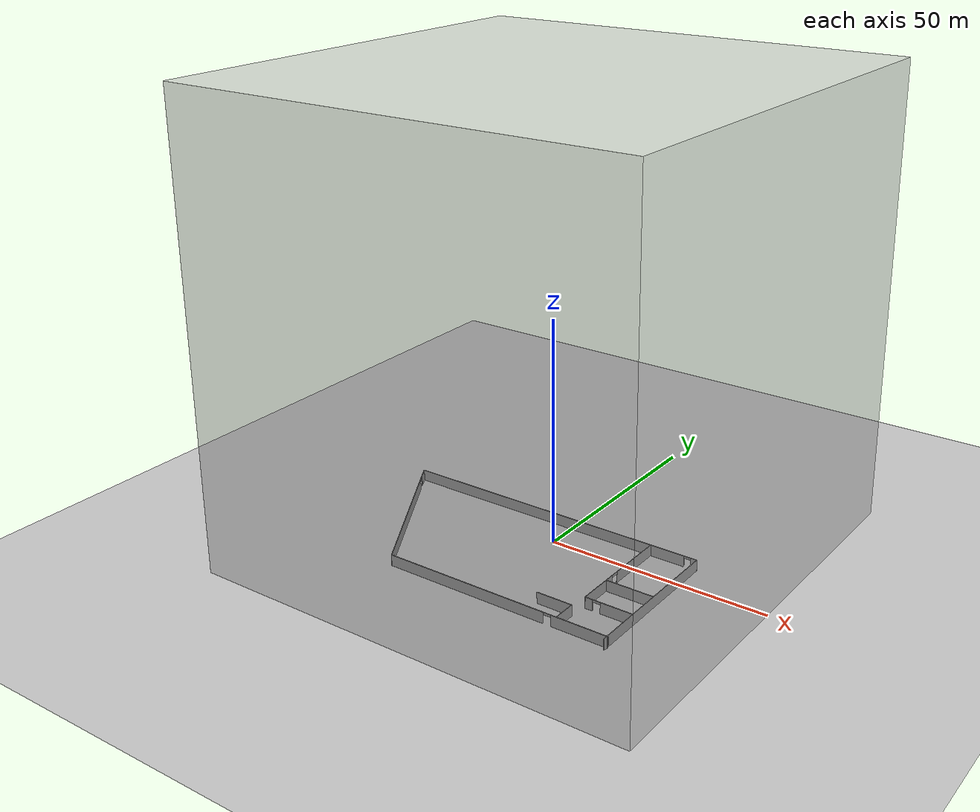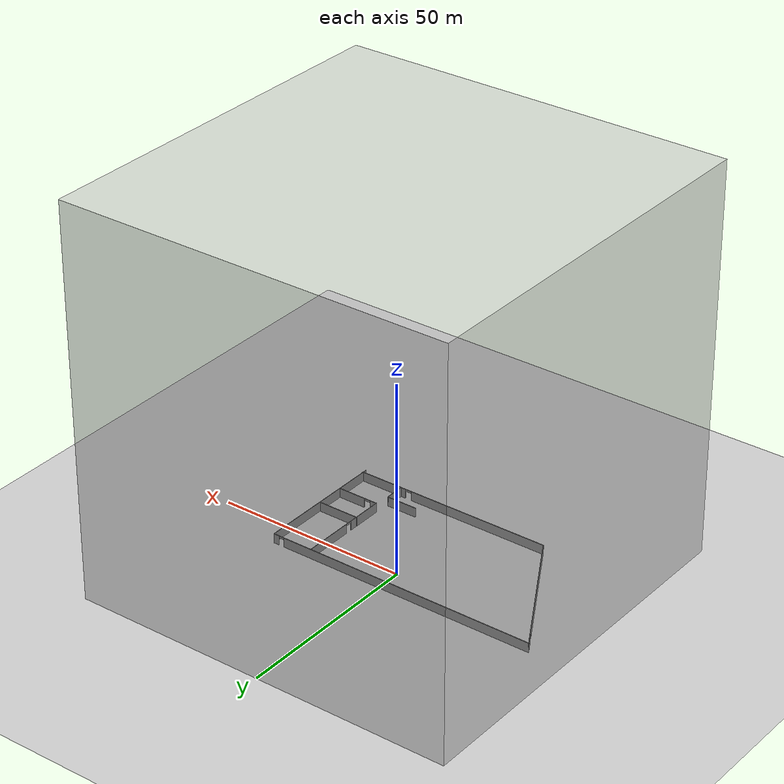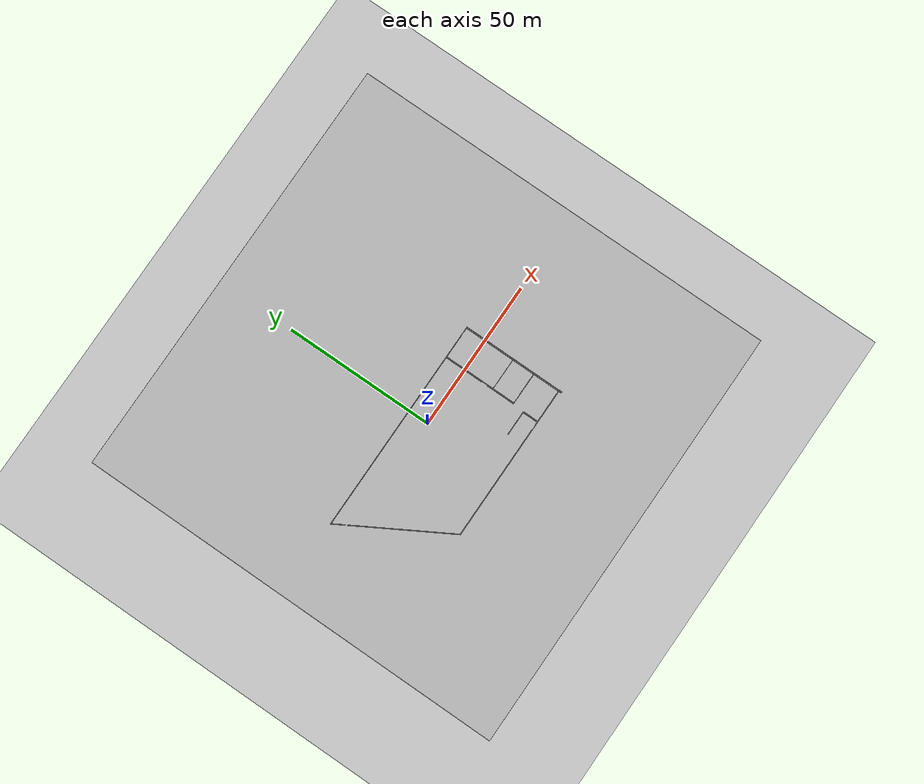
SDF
<sdf version="1.5">
 <world name="default">
  <include><uri>model://sun</uri></include>
  <physics default="0" name="default_physics" type="ode">
   <max_step_size>0.001</max_step_size>
   <real_time_factor>1</real_time_factor>
   <real_time_update_rate>1000</real_time_update_rate>
   <ode>
    <solver>
     <type>quick</type>
     <iters>50</iters>
     <sor>1.0</sor>
     <use_dynamic_moi_rescaling>false</use_dynamic_moi_rescaling>
    </solver>
   </ode>
  </physics>
  <model name="ground_plane">
   <static>true</static>
   <link name="plane">
    <visual name="plane_visual">
     <geometry><plane><normal>0 0 1</normal><size>1000 1000</size></plane></geometry>
    </visual>
    <collision name="plane_collision">
     <geometry><plane><normal>0 0 1</normal><size>1000 1000</size></plane></geometry>
     <surface><friction><ode><mu>0.1</mu><mu2>0.1</mu2></ode></friction></surface>
    </collision>
   </link>
  </model>
  <model name="face_plane_1">
   <static>false</static>
   <link name="link">
    <gravity>0</gravity>
    <visual name="visual">
     <geometry><plane><normal>0 0 1</normal><size>0.24 0.32</size></plane></geometry>
     <material>
      <script>
       <uri>file:///mnt/catkin_ws/src/nesfr3_simulations/nesfr3_gazebo/materials/faces.material</uri>
       <name>face_1</name>
      </script>
     </material>
    </visual>
   </link>
  </model>
  <include><uri>model://wom_office</uri></include>
  <model name="big box">
   <static>true</static>
   <link name="link ceiling">
    <visual name="visual ceiling">
     <pose>0 0 100 0 0 0</pose>
     <transparency>0.5</transparency>
     <geometry><plane><normal>0 0 1</normal><size>100 100</size></plane></geometry>
    </visual>
   </link>
   <link name="link front_wall">
    <visual name="visual front_wall">
     <pose>50 0 50 0 -1.5708 0</pose>
     <transparency>0.5</transparency>
     <geometry><plane><normal>0 0 0</normal><size>100 100</size></plane></geometry>
    </visual>
   </link>
   <link name="link left_wall">
    <visual name="visual left_wall">
     <pose>0 50 50 -1.5708 0 0</pose>
     <transparency>0.5</transparency>
     <geometry><plane><normal>0 0 0</normal><size>100 100</size></plane></geometry>
    </visual>
   </link>
   <link name="link right_wall">
    <visual name="visual right_wall">
     <pose>0 -50 50 -1.5708 0 0</pose>
     <transparency>0.5</transparency>
     <geometry><plane><normal>0 0 0</normal><size>100 100</size></plane></geometry>
    </visual>
   </link>
   <link name="link back_wall">
    <visual name="visual back_wall">
     <pose>-50 0 50 0 -1.5708 0</pose>
     <transparency>0.5</transparency>
     <geometry><plane><normal>0 0 0</normal><size>100 100</size></plane></geometry>
    </visual>
   </link>
  </model>
 </world>
</sdf>

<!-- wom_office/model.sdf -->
<sdf version='1.6'>
  <model name='wom_office'>
    <pose frame=''>-5.12929 -10.5377 0 0 -0 0</pose>
    <link name='Wall_15'>
      <collision name='Wall_15_Collision'>
        <geometry>
          <box>
            <size>34.75 0.15 2.5</size>
          </box>
        </geometry>
        <pose frame=''>0 0 1.25 0 -0 0</pose>
      </collision>
      <visual name='Wall_15_Visual'>
        <pose frame=''>0 0 1.25 0 -0 0</pose>
        <geometry>
          <box>
            <size>34.75 0.15 2.5</size>
          </box>
        </geometry>
        <material>
          <script>
            <uri>file://media/materials/scripts/gazebo.material</uri>
            <name>Gazebo/Grey</name>
          </script>
          <ambient>1 1 1 1</ambient>
        </material>
        <meta>
          <layer>0</layer>
        </meta>
      </visual>
      <pose frame=''>35.7762 -0.009668 0 0 -0 -1.5708</pose>
    </link>
    <link name='Wall_18'>
      <collision name='Wall_18_Collision'>
        <geometry>
          <box>
            <size>11 0.15 2.5</size>
          </box>
        </geometry>
        <pose frame=''>0 0 1.25 0 -0 0</pose>
      </collision>
      <visual name='Wall_18_Visual'>
        <pose frame=''>0 0 1.25 0 -0 0</pose>
        <geometry>
          <box>
            <size>11 0.15 2.5</size>
          </box>
        </geometry>
        <material>
          <script>
            <uri>file://media/materials/scripts/gazebo.material</uri>
            <name>Gazebo/Grey</name>
          </script>
          <ambient>1 1 1 1</ambient>
        </material>
        <meta>
          <layer>0</layer>
        </meta>
      </visual>
      <pose frame=''>30.3437 0.299655 0 0 -0 0</pose>
    </link>
    <link name='Wall_20'>
      <collision name='Wall_20_Collision'>
        <geometry>
          <box>
            <size>8.25 0.15 2.5</size>
          </box>
        </geometry>
        <pose frame=''>0 0 1.25 0 -0 0</pose>
      </collision>
      <visual name='Wall_20_Visual'>
        <pose frame=''>0 0 1.25 0 -0 0</pose>
        <geometry>
          <box>
            <size>8.25 0.15 2.5</size>
          </box>
        </geometry>
        <material>
          <script>
            <uri>file://media/materials/scripts/gazebo.material</uri>
            <name>Gazebo/Grey</name>
          </script>
          <ambient>1 1 1 1</ambient>
        </material>
        <meta>
          <layer>0</layer>
        </meta>
      </visual>
      <pose frame=''>20.3591 -11.1545 0 0 -0 0</pose>
    </link>
    <link name='Wall_21'>
      <collision name='Wall_21_Collision'>
        <geometry>
          <box>
            <size>5.25 0.15 2.5</size>
          </box>
        </geometry>
        <pose frame=''>0 0 1.25 0 -0 0</pose>
      </collision>
      <visual name='Wall_21_Visual'>
        <pose frame=''>0 0 1.25 0 -0 0</pose>
        <geometry>
          <box>
            <size>5.25 0.15 2.5</size>
          </box>
        </geometry>
        <material>
          <script>
            <uri>file://media/materials/scripts/gazebo.material</uri>
            <name>Gazebo/Grey</name>
          </script>
          <ambient>1 1 1 1</ambient>
        </material>
        <meta>
          <layer>0</layer>
        </meta>
      </visual>
      <pose frame=''>24.4091 -13.7045 0 0 -0 -1.5708</pose>
    </link>
    <link name='Wall_23'>
      <pose frame=''>24.9187 8.72466 0 0 -0 1.5708</pose>
      <visual name='Wall_23_Visual_0'>
        <pose frame=''>-7.42244 0 1.25 0 -0 0</pose>
        <geometry>
          <box>
            <size>2.15512 0.15 2.5</size>
          </box>
        </geometry>
        <material>
          <script>
            <uri>file://media/materials/scripts/gazebo.material</uri>
            <name>Gazebo/Grey</name>
          </script>
          <ambient>1 1 1 1</ambient>
        </material>
        <meta>
          <layer>0</layer>
        </meta>
      </visual>
      <collision name='Wall_23_Collision_0'>
        <geometry>
          <box>
            <size>2.15512 0.15 2.5</size>
          </box>
        </geometry>
        <pose frame=''>-7.42244 0 1.25 0 -0 0</pose>
      </collision>
      <visual name='Wall_23_Visual_1'>
        <pose frame=''>1.95317 0 1.25 0 -0 0</pose>
        <geometry>
          <box>
            <size>13.0937 0.15 2.5</size>
          </box>
        </geometry>
        <material>
          <script>
            <uri>file://media/materials/scripts/gazebo.material</uri>
            <name>Gazebo/Grey</name>
          </script>
          <ambient>1 1 1 1</ambient>
        </material>
        <meta>
          <layer>0</layer>
        </meta>
      </visual>
      <collision name='Wall_23_Collision_1'>
        <geometry>
          <box>
            <size>13.0937 0.15 2.5</size>
          </box>
        </geometry>
        <pose frame=''>1.95317 0 1.25 0 -0 0</pose>
      </collision>
      <visual name='Wall_23_Visual_2'>
        <pose frame=''>-5.46927 0 2.25 0 -0 0</pose>
        <geometry>
          <box>
            <size>1.75121 0.15 0.5</size>
          </box>
        </geometry>
        <material>
          <script>
            <uri>file://media/materials/scripts/gazebo.material</uri>
            <name>Gazebo/Grey</name>
          </script>
          <ambient>1 1 1 1</ambient>
        </material>
        <meta>
          <layer>0</layer>
        </meta>
      </visual>
      <collision name='Wall_23_Collision_2'>
        <geometry>
          <box>
            <size>1.75121 0.15 0.5</size>
          </box>
        </geometry>
        <pose frame=''>-5.46927 0 2.25 0 -0 0</pose>
      </collision>
    </link>
    <link name='Wall_29'>
      <collision name='Wall_29_Collision'>
        <geometry>
          <box>
            <size>7.75 0.15 2.5</size>
          </box>
        </geometry>
        <pose frame=''>0 0 1.25 0 -0 0</pose>
      </collision>
      <visual name='Wall_29_Visual'>
        <pose frame=''>0 0 1.25 0 -0 0</pose>
        <geometry>
          <box>
            <size>7.75 0.15 2.5</size>
          </box>
        </geometry>
        <material>
          <script>
            <uri>file://media/materials/scripts/gazebo.material</uri>
            <name>Gazebo/Grey</name>
          </script>
          <ambient>1 1 1 1</ambient>
        </material>
        <meta>
          <layer>0</layer>
        </meta>
      </visual>
      <pose frame=''>24.9187 -3.50034 0 0 -0 -1.5708</pose>
    </link>
    <link name='Wall_30'>
      <pose frame=''>30.3437 -7.30034 0 0 -0 0</pose>
      <visual name='Wall_30_Visual_0'>
        <pose frame=''>-4.59271 0 1.25 0 -0 0</pose>
        <geometry>
          <box>
            <size>1.81458 0.15 2.5</size>
          </box>
        </geometry>
        <material>
          <script>
            <uri>file://media/materials/scripts/gazebo.material</uri>
            <name>Gazebo/Grey</name>
          </script>
          <ambient>1 1 1 1</ambient>
        </material>
        <meta>
          <layer>0</layer>
        </meta>
      </visual>
      <collision name='Wall_30_Collision_0'>
        <geometry>
          <box>
            <size>1.81458 0.15 2.5</size>
          </box>
        </geometry>
        <pose frame=''>-4.59271 0 1.25 0 -0 0</pose>
      </collision>
      <visual name='Wall_30_Visual_1'>
        <pose frame=''>1.78289 0 1.25 0 -0 0</pose>
        <geometry>
          <box>
            <size>7.43422 0.15 2.5</size>
          </box>
        </geometry>
        <material>
          <script>
            <uri>file://media/materials/scripts/gazebo.material</uri>
            <name>Gazebo/Grey</name>
          </script>
          <ambient>1 1 1 1</ambient>
        </material>
        <meta>
          <layer>0</layer>
        </meta>
      </visual>
      <collision name='Wall_30_Collision_1'>
        <geometry>
          <box>
            <size>7.43422 0.15 2.5</size>
          </box>
        </geometry>
        <pose frame=''>1.78289 0 1.25 0 -0 0</pose>
      </collision>
      <visual name='Wall_30_Visual_2'>
        <pose frame=''>-2.80982 0 2.25 0 -0 0</pose>
        <geometry>
          <box>
            <size>1.75121 0.15 0.5</size>
          </box>
        </geometry>
        <material>
          <script>
            <uri>file://media/materials/scripts/gazebo.material</uri>
            <name>Gazebo/Grey</name>
          </script>
          <ambient>1 1 1 1</ambient>
        </material>
        <meta>
          <layer>0</layer>
        </meta>
      </visual>
      <collision name='Wall_30_Collision_2'>
        <geometry>
          <box>
            <size>1.75121 0.15 0.5</size>
          </box>
        </geometry>
        <pose frame=''>-2.80982 0 2.25 0 -0 0</pose>
      </collision>
    </link>
    <link name='Wall_4'>
      <pose frame=''>-0.066074 17.2863 0 0 -0 0.000113</pose>
      <visual name='Wall_4_Visual_0'>
        <pose frame=''>-1.51504 0 1.25 0 -0 0</pose>
        <geometry>
          <box>
            <size>68.8045 0.15 2.5</size>
          </box>
        </geometry>
        <material>
          <script>
            <uri>file://media/materials/scripts/gazebo.material</uri>
            <name>Gazebo/Grey</name>
          </script>
          <ambient>1 1 1 1</ambient>
        </material>
        <meta>
          <layer>0</layer>
        </meta>
      </visual>
      <collision name='Wall_4_Collision_0'>
        <geometry>
          <box>
            <size>68.8045 0.15 2.5</size>
          </box>
        </geometry>
        <pose frame=''>-1.51504 0 1.25 0 -0 0</pose>
      </collision>
      <visual name='Wall_4_Visual_1'>
        <pose frame=''>35.1449 0 1.25 0 -0 0</pose>
        <geometry>
          <box>
            <size>1.54488 0.15 2.5</size>
          </box>
        </geometry>
        <material>
          <script>
            <uri>file://media/materials/scripts/gazebo.material</uri>
            <name>Gazebo/Grey</name>
          </script>
          <ambient>1 1 1 1</ambient>
        </material>
        <meta>
          <layer>0</layer>
        </meta>
      </visual>
      <collision name='Wall_4_Collision_1'>
        <geometry>
          <box>
            <size>1.54488 0.15 2.5</size>
          </box>
        </geometry>
        <pose frame=''>35.1449 0 1.25 0 -0 0</pose>
      </collision>
      <visual name='Wall_4_Visual_2'>
        <pose frame=''>33.6298 0 2.25 0 -0 0</pose>
        <geometry>
          <box>
            <size>1.4852 0.15 0.5</size>
          </box>
        </geometry>
        <material>
          <script>
            <uri>file://media/materials/scripts/gazebo.material</uri>
            <name>Gazebo/Grey</name>
          </script>
          <ambient>1 1 1 1</ambient>
        </material>
        <meta>
          <layer>0</layer>
        </meta>
      </visual>
      <collision name='Wall_4_Collision_2'>
        <geometry>
          <box>
            <size>1.4852 0.15 0.5</size>
          </box>
        </geometry>
        <pose frame=''>33.6298 0 2.25 0 -0 0</pose>
      </collision>
    </link>
    <link name='Wall_6'>
      <pose frame=''>9.72623 -16.3629 0 0 -0 3.14159</pose>
      <visual name='Wall_6_Visual_0'>
        <pose frame=''>-19.8106 0 1.25 0 -0 0</pose>
        <geometry>
          <box>
            <size>12.948 0.15 2.5</size>
          </box>
        </geometry>
        <material>
          <script>
            <uri>file://media/materials/scripts/gazebo.material</uri>
            <name>Gazebo/Grey</name>
          </script>
          <ambient>1 1 1 1</ambient>
        </material>
        <meta>
          <layer>0</layer>
        </meta>
      </visual>
      <collision name='Wall_6_Collision_0'>
        <geometry>
          <box>
            <size>12.948 0.15 2.5</size>
          </box>
        </geometry>
        <pose frame=''>-19.8106 0 1.25 0 -0 0</pose>
      </collision>
      <visual name='Wall_6_Visual_1'>
        <pose frame=''>7.32301 0 1.25 0 -0 0</pose>
        <geometry>
          <box>
            <size>37.9232 0.15 2.5</size>
          </box>
        </geometry>
        <material>
          <script>
            <uri>file://media/materials/scripts/gazebo.material</uri>
            <name>Gazebo/Grey</name>
          </script>
          <ambient>1 1 1 1</ambient>
        </material>
        <meta>
          <layer>0</layer>
        </meta>
      </visual>
      <collision name='Wall_6_Collision_1'>
        <geometry>
          <box>
            <size>37.9232 0.15 2.5</size>
          </box>
        </geometry>
        <pose frame=''>7.32301 0 1.25 0 -0 0</pose>
      </collision>
      <visual name='Wall_6_Visual_2'>
        <pose frame=''>-12.4876 0 2.25 0 -0 0</pose>
        <geometry>
          <box>
            <size>1.69801 0.15 0.5</size>
          </box>
        </geometry>
        <material>
          <script>
            <uri>file://media/materials/scripts/gazebo.material</uri>
            <name>Gazebo/Grey</name>
          </script>
          <ambient>1 1 1 1</ambient>
        </material>
        <meta>
          <layer>0</layer>
        </meta>
      </visual>
      <collision name='Wall_6_Collision_2'>
        <geometry>
          <box>
            <size>1.69801 0.15 0.5</size>
          </box>
        </geometry>
        <pose frame=''>-12.4876 0 2.25 0 -0 0</pose>
      </collision>
    </link>
    <link name='Wall_7'>
      <pose frame=''>-26.1959 0.459675 0 0 -0 2.0944</pose>
      <visual name='Wall_7_Visual_0'>
        <pose frame=''>-2.58892 0 1.25 0 -0 0</pose>
        <geometry>
          <box>
            <size>33.8222 0.15 2.5</size>
          </box>
        </geometry>
        <material>
          <script>
            <uri>file://media/materials/scripts/gazebo.material</uri>
            <name>Gazebo/Grey</name>
          </script>
          <ambient>1 1 1 1</ambient>
        </material>
        <meta>
          <layer>0</layer>
        </meta>
      </visual>
      <collision name='Wall_7_Collision_0'>
        <geometry>
          <box>
            <size>33.8222 0.15 2.5</size>
          </box>
        </geometry>
        <pose frame=''>-2.58892 0 1.25 0 -0 0</pose>
      </collision>
      <visual name='Wall_7_Visual_1'>
        <pose frame=''>17.8646 0 1.25 0 -0 0</pose>
        <geometry>
          <box>
            <size>3.2708 0.15 2.5</size>
          </box>
        </geometry>
        <material>
          <script>
            <uri>file://media/materials/scripts/gazebo.material</uri>
            <name>Gazebo/Grey</name>
          </script>
          <ambient>1 1 1 1</ambient>
        </material>
        <meta>
          <layer>0</layer>
        </meta>
      </visual>
      <collision name='Wall_7_Collision_1'>
        <geometry>
          <box>
            <size>3.2708 0.15 2.5</size>
          </box>
        </geometry>
        <pose frame=''>17.8646 0 1.25 0 -0 0</pose>
      </collision>
      <visual name='Wall_7_Visual_2'>
        <pose frame=''>15.2757 0 2.25 0 -0 0</pose>
        <geometry>
          <box>
            <size>1.90705 0.15 0.5</size>
          </box>
        </geometry>
        <material>
          <script>
            <uri>file://media/materials/scripts/gazebo.material</uri>
            <name>Gazebo/Grey</name>
          </script>
          <ambient>1 1 1 1</ambient>
        </material>
        <meta>
          <layer>0</layer>
        </meta>
      </visual>
      <collision name='Wall_7_Collision_2'>
        <geometry>
          <box>
            <size>1.90705 0.15 0.5</size>
          </box>
        </geometry>
        <pose frame=''>15.2757 0 2.25 0 -0 0</pose>
      </collision>
    </link>
    <static>1</static>
  </model>
</sdf>
